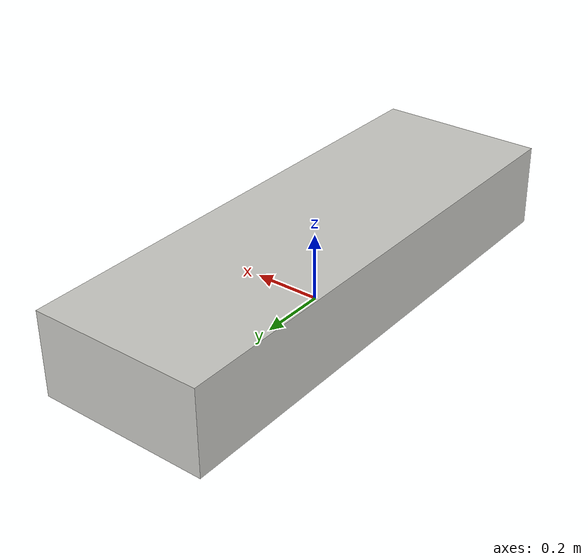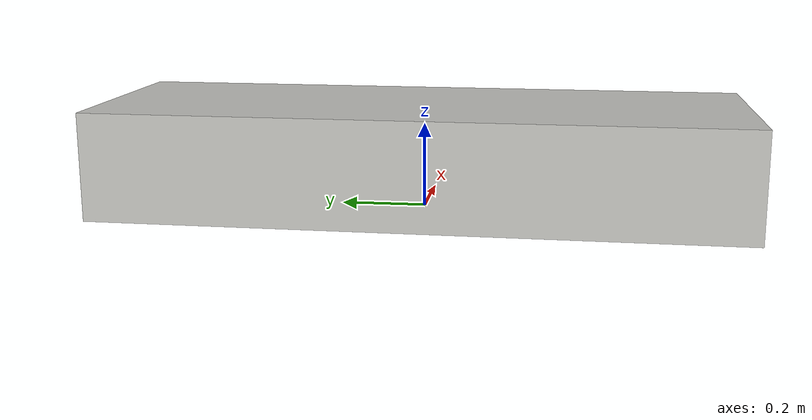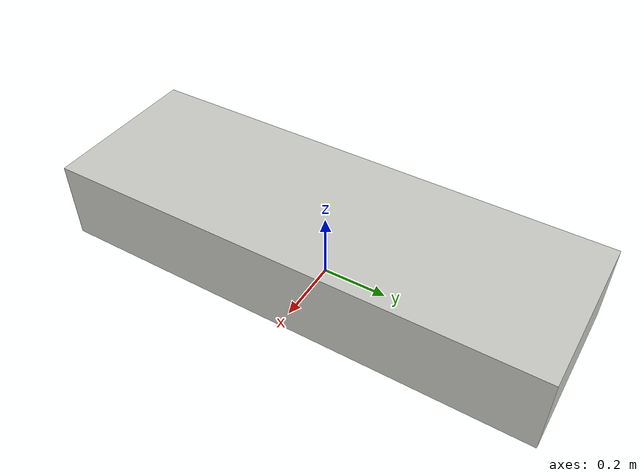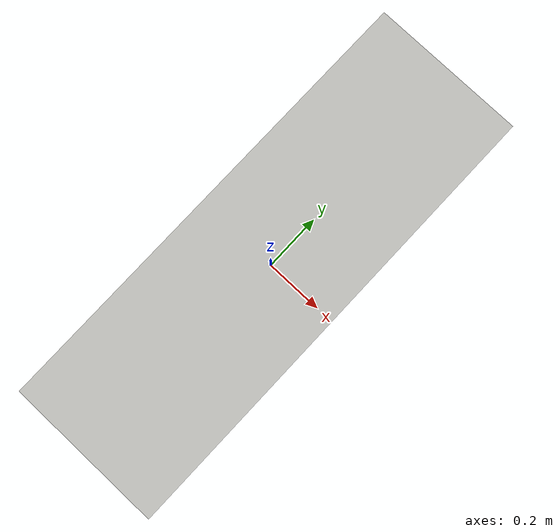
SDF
<?xml version='1.0'?>
<sdf version='1.6'>
  <model name='wall_obs_short'>
    <pose frame=''>0 0 0 0 -0 0</pose>
    <link name='Wall_b'>
      <collision name='Wall_45_Collision'>
        <geometry>
          <box>
            <size>0.5 1.5 0.25</size>
          </box>
        </geometry>
        <pose frame=''>0 0 0.125 0 -0 0</pose>
      </collision>
      <visual name='Wall_45_Visual'>
        <pose frame=''>0 0 0.125 0 -0 0</pose>
        <geometry>
          <box>
            <size>0.5 1.5 0.25</size>
          </box>
        </geometry>
        <material>
          <script>
            <uri>file://media/materials/scripts/gazebo.material</uri>
            <name>Gazebo/CeilingTiled</name>
          </script>
          <ambient>1 1 1 1</ambient>
        </material>
        <meta>
          <layer>0</layer>
        </meta>
      </visual>
        <pose frame=''>0 0 0 0 -0 0</pose>
    </link>
    <static>1</static>
  </model>
</sdf>
